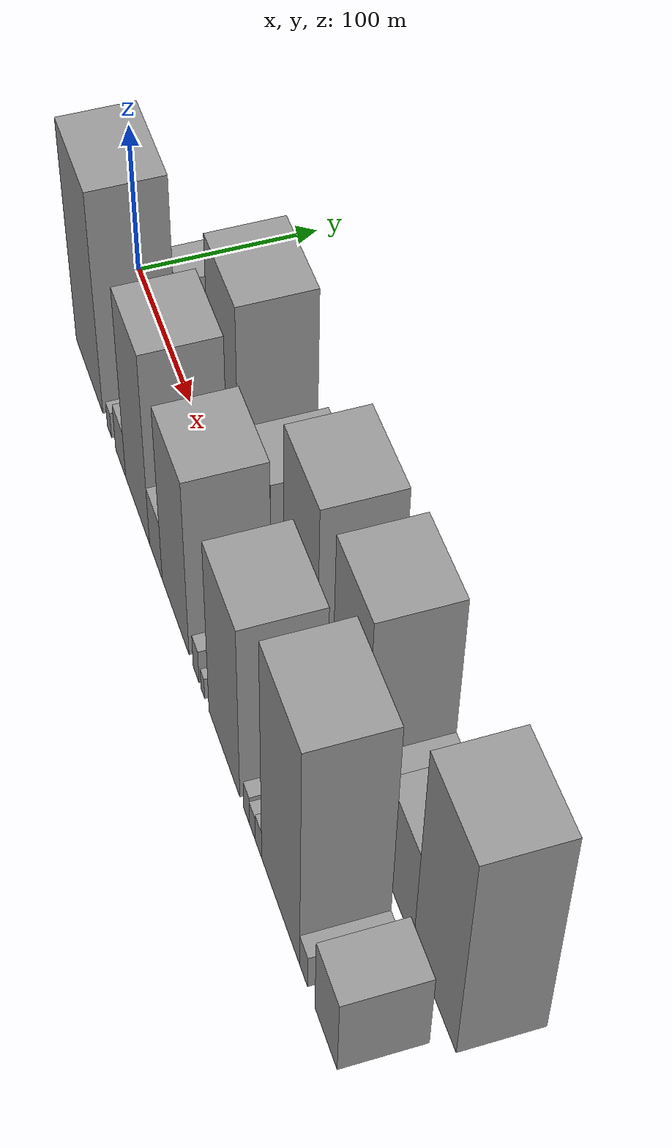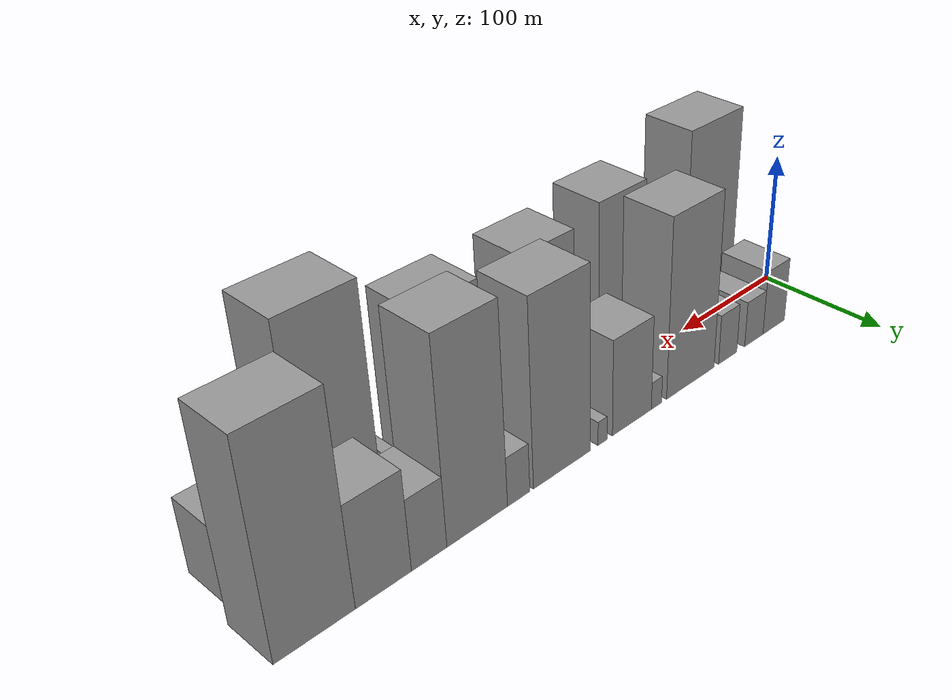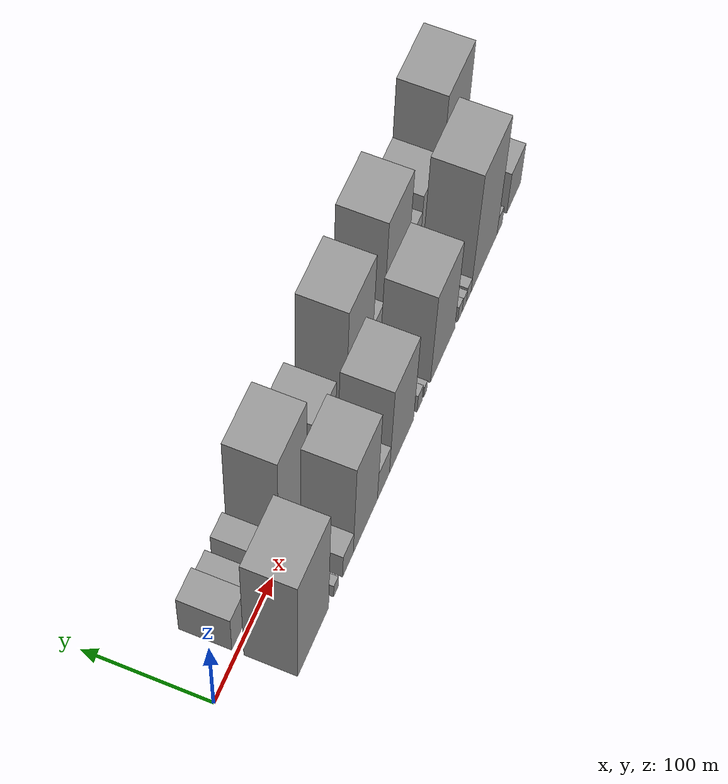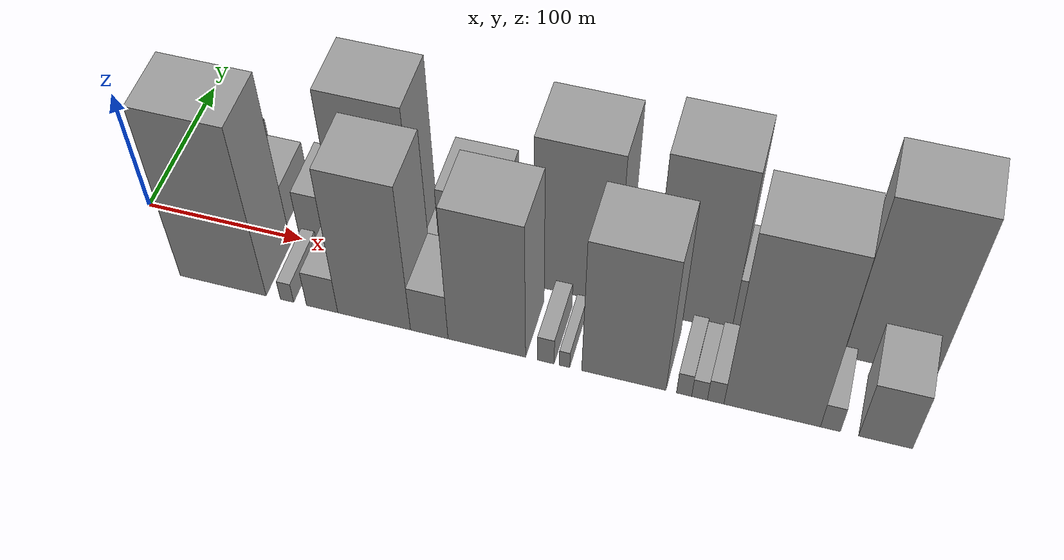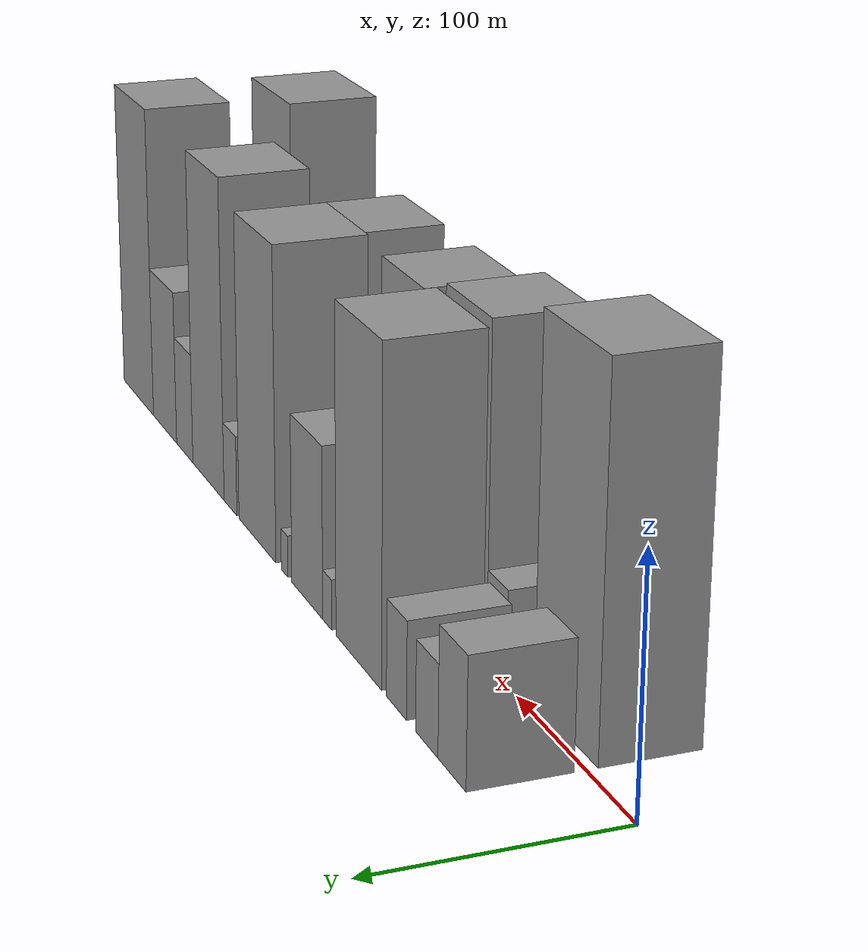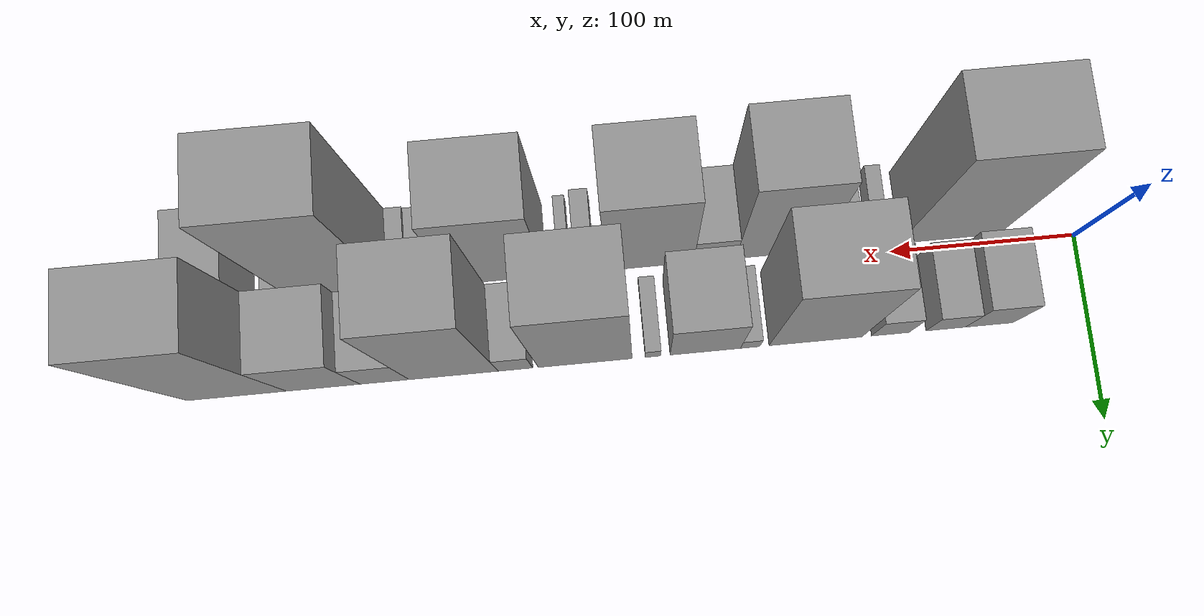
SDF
<sdf version="1.6">
 <world name="default">
  <scene>
   <sky><clouds><speed>12</speed></clouds></sky>
   <ambient>0.4 0.4 0.4 1</ambient>
   <background>0.7 0.7 0.7 1</background>
   <shadows>1</shadows>
  </scene>
  <gravity>0 0 -9.8066</gravity>
  <magnetic_field>6e-06 2.3e-05 -4.2e-05</magnetic_field>
  <physics default="0" name="default_physics" type="ode">
   <ode>
    <solver>
     <type>quick</type>
     <iters>10</iters>
     <sor>1.0</sor>
     <use_dynamic_moi_rescaling>0</use_dynamic_moi_rescaling>
    </solver>
    <constraints>
     <cfm>0</cfm>
     <erp>0.2</erp>
     <contact_max_correcting_vel>100</contact_max_correcting_vel>
     <contact_surface_layer>0.001</contact_surface_layer>
    </constraints>
   </ode>
   <max_step_size>0.004</max_step_size>
   <real_time_factor>1</real_time_factor>
   <real_time_update_rate>250</real_time_update_rate>
  </physics>
  <light name="sun" type="directional">
   <pose>0 0 10 0 0 0</pose>
   <diffuse>0.8 0.8 0.8 1</diffuse>
   <specular>0.2 0.2 0.2 1</specular>
   <attenuation>
    <range>1000</range>
    <constant>0.9</constant>
    <linear>0.01</linear>
    <quadratic>0.001</quadratic>
   </attenuation>
   <direction>-0.5 0.1 -0.9</direction>
  </light>
  <model name="building_1">
   <static>1</static>
   <pose>52.8574 24.5000 0 0.000000 0.000000 1.570796</pose>
   <link name="link">
    <pose>0 0 25.50 0 0 0</pose>
    <collision name="collision"><geometry><box><size>40.0000 25.7147 51.0000</size></box></geometry></collision>
    <visual name="visual">
     <cast_shadows>0</cast_shadows>
     <geometry><box><size>40.0000 25.7147 51.0000</size></box></geometry>
     <material>
      <script>
       <uri>model://grey_wall/materials/scripts</uri>
       <uri>model://grey_wall/materials/textures</uri>
       <name>vrc/grey_wall</name>
      </script>
     </material>
    </visual>
   </link>
  </model>
  <model name="building_2">
   <static>1</static>
   <pose>76.3778 24.5000 0 0.000000 0.000000 1.570796</pose>
   <link name="link">
    <pose>0 0 18.00 0 0 0</pose>
    <collision name="collision"><geometry><box><size>40.0000 21.3261 36.0000</size></box></geometry></collision>
    <visual name="visual">
     <cast_shadows>0</cast_shadows>
     <geometry><box><size>40.0000 21.3261 36.0000</size></box></geometry>
     <material>
      <script>
       <uri>model://grey_wall/materials/scripts</uri>
       <uri>model://grey_wall/materials/textures</uri>
       <name>vrc/grey_wall</name>
      </script>
     </material>
    </visual>
   </link>
  </model>
  <model name="building_3">
   <static>1</static>
   <pose>106.2204 24.5000 0 0.000000 0.000000 1.570796</pose>
   <link name="link">
    <pose>0 0 19.50 0 0 0</pose>
    <collision name="collision"><geometry><box><size>40.0000 20.3591 39.0000</size></box></geometry></collision>
    <visual name="visual">
     <cast_shadows>0</cast_shadows>
     <geometry><box><size>40.0000 20.3591 39.0000</size></box></geometry>
     <material>
      <script>
       <uri>model://grey_wall/materials/scripts</uri>
       <uri>model://grey_wall/materials/textures</uri>
       <name>vrc/grey_wall</name>
      </script>
     </material>
    </visual>
   </link>
  </model>
  <model name="building_4">
   <static>1</static>
   <pose>146.4142 24.5000 0 0.000000 0.000000 1.570796</pose>
   <link name="link">
    <pose>0 0 67.50 0 0 0</pose>
    <collision name="collision"><geometry><box><size>40.0000 50.0285 135.0000</size></box></geometry></collision>
    <visual name="visual">
     <cast_shadows>0</cast_shadows>
     <geometry><box><size>40.0000 50.0285 135.0000</size></box></geometry>
     <material>
      <script>
       <uri>model://grey_wall/materials/scripts</uri>
       <uri>model://grey_wall/materials/textures</uri>
       <name>vrc/grey_wall</name>
      </script>
     </material>
    </visual>
   </link>
  </model>
  <model name="building_5">
   <static>1</static>
   <pose>181.6122 24.5000 0 0.000000 0.000000 1.570796</pose>
   <link name="link">
    <pose>0 0 10.50 0 0 0</pose>
    <collision name="collision"><geometry><box><size>40.0000 10.3676 21.0000</size></box></geometry></collision>
    <visual name="visual">
     <cast_shadows>0</cast_shadows>
     <geometry><box><size>40.0000 10.3676 21.0000</size></box></geometry>
     <material>
      <script>
       <uri>model://grey_wall/materials/scripts</uri>
       <uri>model://grey_wall/materials/textures</uri>
       <name>vrc/grey_wall</name>
      </script>
     </material>
    </visual>
   </link>
  </model>
  <model name="building_6">
   <static>1</static>
   <pose>205.6074 24.5000 0 0.000000 0.000000 1.570796</pose>
   <link name="link">
    <pose>0 0 36.00 0 0 0</pose>
    <collision name="collision"><geometry><box><size>40.0000 37.6228 72.0000</size></box></geometry></collision>
    <visual name="visual">
     <cast_shadows>0</cast_shadows>
     <geometry><box><size>40.0000 37.6228 72.0000</size></box></geometry>
     <material>
      <script>
       <uri>model://grey_wall/materials/scripts</uri>
       <uri>model://grey_wall/materials/textures</uri>
       <name>vrc/grey_wall</name>
      </script>
     </material>
    </visual>
   </link>
  </model>
  <model name="building_7">
   <static>1</static>
   <pose>233.5622 24.5000 0 0.000000 0.000000 1.570796</pose>
   <link name="link">
    <pose>0 0 9.00 0 0 0</pose>
    <collision name="collision"><geometry><box><size>40.0000 8.2868 18.0000</size></box></geometry></collision>
    <visual name="visual">
     <cast_shadows>0</cast_shadows>
     <geometry><box><size>40.0000 8.2868 18.0000</size></box></geometry>
     <material>
      <script>
       <uri>model://grey_wall/materials/scripts</uri>
       <uri>model://grey_wall/materials/textures</uri>
       <name>vrc/grey_wall</name>
      </script>
     </material>
    </visual>
   </link>
  </model>
  <model name="building_8">
   <static>1</static>
   <pose>269.6419 24.5000 0 0.000000 0.000000 1.570796</pose>
   <link name="link">
    <pose>0 0 67.50 0 0 0</pose>
    <collision name="collision"><geometry><box><size>40.0000 49.8725 135.0000</size></box></geometry></collision>
    <visual name="visual">
     <cast_shadows>0</cast_shadows>
     <geometry><box><size>40.0000 49.8725 135.0000</size></box></geometry>
     <material>
      <script>
       <uri>model://grey_wall/materials/scripts</uri>
       <uri>model://grey_wall/materials/textures</uri>
       <name>vrc/grey_wall</name>
      </script>
     </material>
    </visual>
   </link>
  </model>
  <model name="building_9">
   <static>1</static>
   <pose>306.7515 24.5000 0 0.000000 0.000000 1.570796</pose>
   <link name="link">
    <pose>0 0 18.00 0 0 0</pose>
    <collision name="collision"><geometry><box><size>40.0000 18.3467 36.0000</size></box></geometry></collision>
    <visual name="visual">
     <cast_shadows>0</cast_shadows>
     <geometry><box><size>40.0000 18.3467 36.0000</size></box></geometry>
     <material>
      <script>
       <uri>model://grey_wall/materials/scripts</uri>
       <uri>model://grey_wall/materials/textures</uri>
       <name>vrc/grey_wall</name>
      </script>
     </material>
    </visual>
   </link>
  </model>
  <model name="building_10">
   <static>1</static>
   <pose>339.5666 24.5000 0 0.000000 0.000000 1.570796</pose>
   <link name="link">
    <pose>0 0 72.00 0 0 0</pose>
    <collision name="collision"><geometry><box><size>40.0000 47.2835 144.0000</size></box></geometry></collision>
    <visual name="visual">
     <cast_shadows>0</cast_shadows>
     <geometry><box><size>40.0000 47.2835 144.0000</size></box></geometry>
     <material>
      <script>
       <uri>model://grey_wall/materials/scripts</uri>
       <uri>model://grey_wall/materials/textures</uri>
       <name>vrc/grey_wall</name>
      </script>
     </material>
    </visual>
   </link>
  </model>
  <model name="building_11">
   <static>1</static>
   <pose>376.2026 24.5000 0 0.000000 0.000000 1.570796</pose>
   <link name="link">
    <pose>0 0 25.50 0 0 0</pose>
    <collision name="collision"><geometry><box><size>40.0000 25.9887 51.0000</size></box></geometry></collision>
    <visual name="visual">
     <cast_shadows>0</cast_shadows>
     <geometry><box><size>40.0000 25.9887 51.0000</size></box></geometry>
     <material>
      <script>
       <uri>model://grey_wall/materials/scripts</uri>
       <uri>model://grey_wall/materials/textures</uri>
       <name>vrc/grey_wall</name>
      </script>
     </material>
    </visual>
   </link>
  </model>
  <model name="building_12">
   <static>1</static>
   <pose>408.6125 24.5000 0 0.000000 0.000000 1.570796</pose>
   <link name="link">
    <pose>0 0 36.00 0 0 0</pose>
    <collision name="collision"><geometry><box><size>40.0000 38.8311 72.0000</size></box></geometry></collision>
    <visual name="visual">
     <cast_shadows>0</cast_shadows>
     <geometry><box><size>40.0000 38.8311 72.0000</size></box></geometry>
     <material>
      <script>
       <uri>model://grey_wall/materials/scripts</uri>
       <uri>model://grey_wall/materials/textures</uri>
       <name>vrc/grey_wall</name>
      </script>
     </material>
    </visual>
   </link>
  </model>
  <model name="building_13">
   <static>1</static>
   <pose>454.2972 24.5000 0 0.000000 0.000000 1.570796</pose>
   <link name="link">
    <pose>0 0 73.50 0 0 0</pose>
    <collision name="collision"><geometry><box><size>40.0000 52.5383 147.0000</size></box></geometry></collision>
    <visual name="visual">
     <cast_shadows>0</cast_shadows>
     <geometry><box><size>40.0000 52.5383 147.0000</size></box></geometry>
     <material>
      <script>
       <uri>model://grey_wall/materials/scripts</uri>
       <uri>model://grey_wall/materials/textures</uri>
       <name>vrc/grey_wall</name>
      </script>
     </material>
    </visual>
   </link>
  </model>
  <model name="building_14">
   <static>1</static>
   <pose>67.3060 -24.5000 0 0.000000 0.000000 1.570796</pose>
   <link name="link">
    <pose>0 0 75.00 0 0 0</pose>
    <collision name="collision"><geometry><box><size>40.0000 54.6119 150.0000</size></box></geometry></collision>
    <visual name="visual">
     <cast_shadows>0</cast_shadows>
     <geometry><box><size>40.0000 54.6119 150.0000</size></box></geometry>
     <material>
      <script>
       <uri>model://grey_wall/materials/scripts</uri>
       <uri>model://grey_wall/materials/textures</uri>
       <name>vrc/grey_wall</name>
      </script>
     </material>
    </visual>
   </link>
  </model>
  <model name="building_15">
   <static>1</static>
   <pose>107.7562 -24.5000 0 0.000000 0.000000 1.570796</pose>
   <link name="link">
    <pose>0 0 9.00 0 0 0</pose>
    <collision name="collision"><geometry><box><size>40.0000 8.2885 18.0000</size></box></geometry></collision>
    <visual name="visual">
     <cast_shadows>0</cast_shadows>
     <geometry><box><size>40.0000 8.2885 18.0000</size></box></geometry>
     <material>
      <script>
       <uri>model://grey_wall/materials/scripts</uri>
       <uri>model://grey_wall/materials/textures</uri>
       <name>vrc/grey_wall</name>
      </script>
     </material>
    </visual>
   </link>
  </model>
  <model name="building_16">
   <static>1</static>
   <pose>129.6216 -24.5000 0 0.000000 0.000000 1.570796</pose>
   <link name="link">
    <pose>0 0 16.50 0 0 0</pose>
    <collision name="collision"><geometry><box><size>40.0000 19.4424 33.0000</size></box></geometry></collision>
    <visual name="visual">
     <cast_shadows>0</cast_shadows>
     <geometry><box><size>40.0000 19.4424 33.0000</size></box></geometry>
     <material>
      <script>
       <uri>model://grey_wall/materials/scripts</uri>
       <uri>model://grey_wall/materials/textures</uri>
       <name>vrc/grey_wall</name>
      </script>
     </material>
    </visual>
   </link>
  </model>
  <model name="building_17">
   <static>1</static>
   <pose>161.6816 -24.5000 0 0.000000 0.000000 1.570796</pose>
   <link name="link">
    <pose>0 0 66.00 0 0 0</pose>
    <collision name="collision"><geometry><box><size>40.0000 44.6776 132.0000</size></box></geometry></collision>
    <visual name="visual">
     <cast_shadows>0</cast_shadows>
     <geometry><box><size>40.0000 44.6776 132.0000</size></box></geometry>
     <material>
      <script>
       <uri>model://grey_wall/materials/scripts</uri>
       <uri>model://grey_wall/materials/textures</uri>
       <name>vrc/grey_wall</name>
      </script>
     </material>
    </visual>
   </link>
  </model>
  <model name="building_18">
   <static>1</static>
   <pose>195.4065 -24.5000 0 0.000000 0.000000 1.570796</pose>
   <link name="link">
    <pose>0 0 21.00 0 0 0</pose>
    <collision name="collision"><geometry><box><size>40.0000 22.7721 42.0000</size></box></geometry></collision>
    <visual name="visual">
     <cast_shadows>0</cast_shadows>
     <geometry><box><size>40.0000 22.7721 42.0000</size></box></geometry>
     <material>
      <script>
       <uri>model://grey_wall/materials/scripts</uri>
       <uri>model://grey_wall/materials/textures</uri>
       <name>vrc/grey_wall</name>
      </script>
     </material>
    </visual>
   </link>
  </model>
  <model name="building_19">
   <static>1</static>
   <pose>230.0039 -24.5000 0 0.000000 0.000000 1.570796</pose>
   <link name="link">
    <pose>0 0 61.50 0 0 0</pose>
    <collision name="collision"><geometry><box><size>40.0000 46.4227 123.0000</size></box></geometry></collision>
    <visual name="visual">
     <cast_shadows>0</cast_shadows>
     <geometry><box><size>40.0000 46.4227 123.0000</size></box></geometry>
     <material>
      <script>
       <uri>model://grey_wall/materials/scripts</uri>
       <uri>model://grey_wall/materials/textures</uri>
       <name>vrc/grey_wall</name>
      </script>
     </material>
    </visual>
   </link>
  </model>
  <model name="building_20">
   <static>1</static>
   <pose>265.1530 -24.5000 0 0.000000 0.000000 1.570796</pose>
   <link name="link">
    <pose>0 0 12.00 0 0 0</pose>
    <collision name="collision"><geometry><box><size>40.0000 9.8754 24.0000</size></box></geometry></collision>
    <visual name="visual">
     <cast_shadows>0</cast_shadows>
     <geometry><box><size>40.0000 9.8754 24.0000</size></box></geometry>
     <material>
      <script>
       <uri>model://grey_wall/materials/scripts</uri>
       <uri>model://grey_wall/materials/textures</uri>
       <name>vrc/grey_wall</name>
      </script>
     </material>
    </visual>
   </link>
  </model>
  <model name="building_21">
   <static>1</static>
   <pose>276.1723 -24.5000 0 0.000000 0.000000 1.570796</pose>
   <link name="link">
    <pose>0 0 7.50 0 0 0</pose>
    <collision name="collision"><geometry><box><size>40.0000 6.1632 15.0000</size></box></geometry></collision>
    <visual name="visual">
     <cast_shadows>0</cast_shadows>
     <geometry><box><size>40.0000 6.1632 15.0000</size></box></geometry>
     <material>
      <script>
       <uri>model://grey_wall/materials/scripts</uri>
       <uri>model://grey_wall/materials/textures</uri>
       <name>vrc/grey_wall</name>
      </script>
     </material>
    </visual>
   </link>
  </model>
  <model name="building_22">
   <static>1</static>
   <pose>310.7134 -24.5000 0 0.000000 0.000000 1.570796</pose>
   <link name="link">
    <pose>0 0 61.50 0 0 0</pose>
    <collision name="collision"><geometry><box><size>40.0000 48.9192 123.0000</size></box></geometry></collision>
    <visual name="visual">
     <cast_shadows>0</cast_shadows>
     <geometry><box><size>40.0000 48.9192 123.0000</size></box></geometry>
     <material>
      <script>
       <uri>model://grey_wall/materials/scripts</uri>
       <uri>model://grey_wall/materials/textures</uri>
       <name>vrc/grey_wall</name>
      </script>
     </material>
    </visual>
   </link>
  </model>
  <model name="building_23">
   <static>1</static>
   <pose>345.5357 -24.5000 0 0.000000 0.000000 1.570796</pose>
   <link name="link">
    <pose>0 0 10.50 0 0 0</pose>
    <collision name="collision"><geometry><box><size>40.0000 8.7254 21.0000</size></box></geometry></collision>
    <visual name="visual">
     <cast_shadows>0</cast_shadows>
     <geometry><box><size>40.0000 8.7254 21.0000</size></box></geometry>
     <material>
      <script>
       <uri>model://grey_wall/materials/scripts</uri>
       <uri>model://grey_wall/materials/textures</uri>
       <name>vrc/grey_wall</name>
      </script>
     </material>
    </visual>
   </link>
  </model>
  <model name="building_24">
   <static>1</static>
   <pose>354.3602 -24.5000 0 0.000000 0.000000 1.570796</pose>
   <link name="link">
    <pose>0 0 9.00 0 0 0</pose>
    <collision name="collision"><geometry><box><size>40.0000 8.9235 18.0000</size></box></geometry></collision>
    <visual name="visual">
     <cast_shadows>0</cast_shadows>
     <geometry><box><size>40.0000 8.9235 18.0000</size></box></geometry>
     <material>
      <script>
       <uri>model://grey_wall/materials/scripts</uri>
       <uri>model://grey_wall/materials/textures</uri>
       <name>vrc/grey_wall</name>
      </script>
     </material>
    </visual>
   </link>
  </model>
  <model name="building_25">
   <static>1</static>
   <pose>363.5271 -24.5000 0 0.000000 0.000000 1.570796</pose>
   <link name="link">
    <pose>0 0 10.50 0 0 0</pose>
    <collision name="collision"><geometry><box><size>40.0000 9.4104 21.0000</size></box></geometry></collision>
    <visual name="visual">
     <cast_shadows>0</cast_shadows>
     <geometry><box><size>40.0000 9.4104 21.0000</size></box></geometry>
     <material>
      <script>
       <uri>model://grey_wall/materials/scripts</uri>
       <uri>model://grey_wall/materials/textures</uri>
       <name>vrc/grey_wall</name>
      </script>
     </material>
    </visual>
   </link>
  </model>
  <model name="building_26">
   <static>1</static>
   <pose>395.3194 -24.5000 0 0.000000 0.000000 1.570796</pose>
   <link name="link">
    <pose>0 0 79.50 0 0 0</pose>
    <collision name="collision"><geometry><box><size>40.0000 54.1742 159.0000</size></box></geometry></collision>
    <visual name="visual">
     <cast_shadows>0</cast_shadows>
     <geometry><box><size>40.0000 54.1742 159.0000</size></box></geometry>
     <material>
      <script>
       <uri>model://grey_wall/materials/scripts</uri>
       <uri>model://grey_wall/materials/textures</uri>
       <name>vrc/grey_wall</name>
      </script>
     </material>
    </visual>
   </link>
  </model>
  <model name="building_27">
   <static>1</static>
   <pose>427.9627 -24.5000 0 0.000000 0.000000 1.570796</pose>
   <link name="link">
    <pose>0 0 12.00 0 0 0</pose>
    <collision name="collision"><geometry><box><size>40.0000 11.1124 24.0000</size></box></geometry></collision>
    <visual name="visual">
     <cast_shadows>0</cast_shadows>
     <geometry><box><size>40.0000 11.1124 24.0000</size></box></geometry>
     <material>
      <script>
       <uri>model://grey_wall/materials/scripts</uri>
       <uri>model://grey_wall/materials/textures</uri>
       <name>vrc/grey_wall</name>
      </script>
     </material>
    </visual>
   </link>
  </model>
  <model name="building_28">
   <static>1</static>
   <pose>458.2869 -24.5000 0 0.000000 0.000000 1.570796</pose>
   <link name="link">
    <pose>0 0 27.00 0 0 0</pose>
    <collision name="collision"><geometry><box><size>40.0000 29.5361 54.0000</size></box></geometry></collision>
    <visual name="visual">
     <cast_shadows>0</cast_shadows>
     <geometry><box><size>40.0000 29.5361 54.0000</size></box></geometry>
     <material>
      <script>
       <uri>model://grey_wall/materials/scripts</uri>
       <uri>model://grey_wall/materials/textures</uri>
       <name>vrc/grey_wall</name>
      </script>
     </material>
    </visual>
   </link>
  </model>
 </world>
</sdf>
